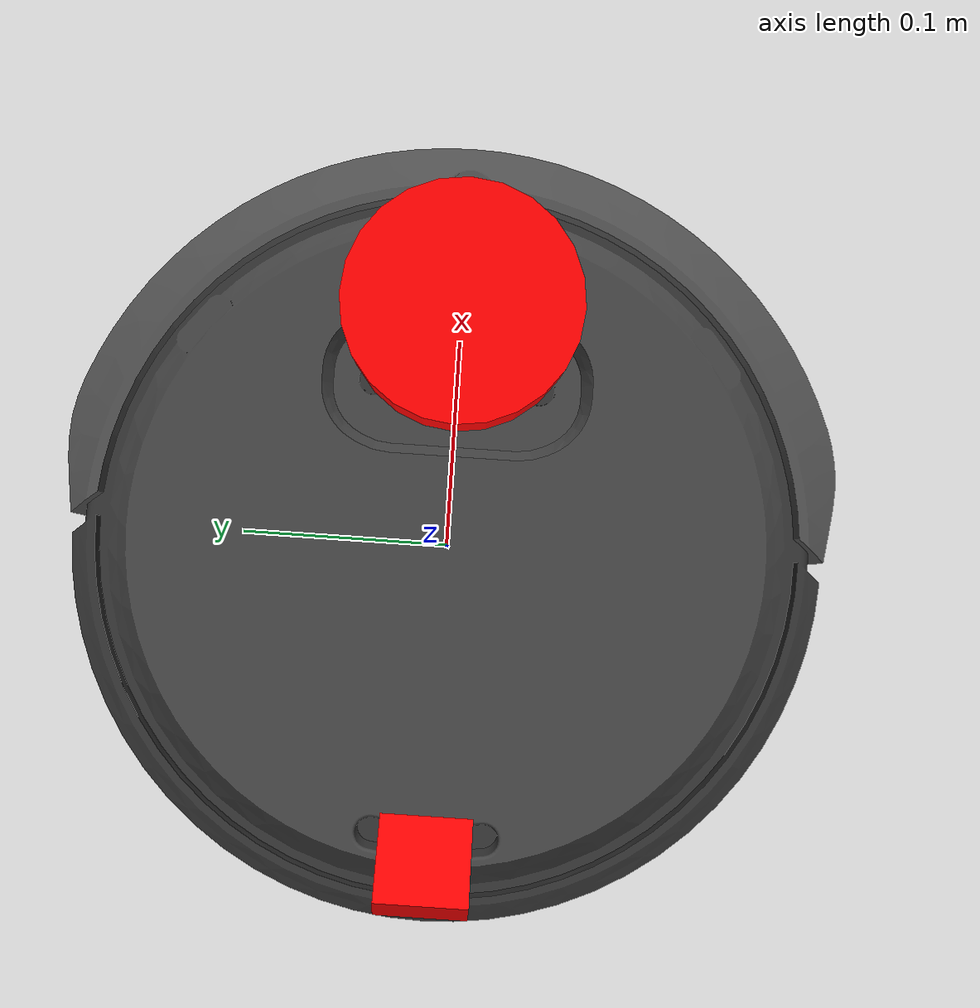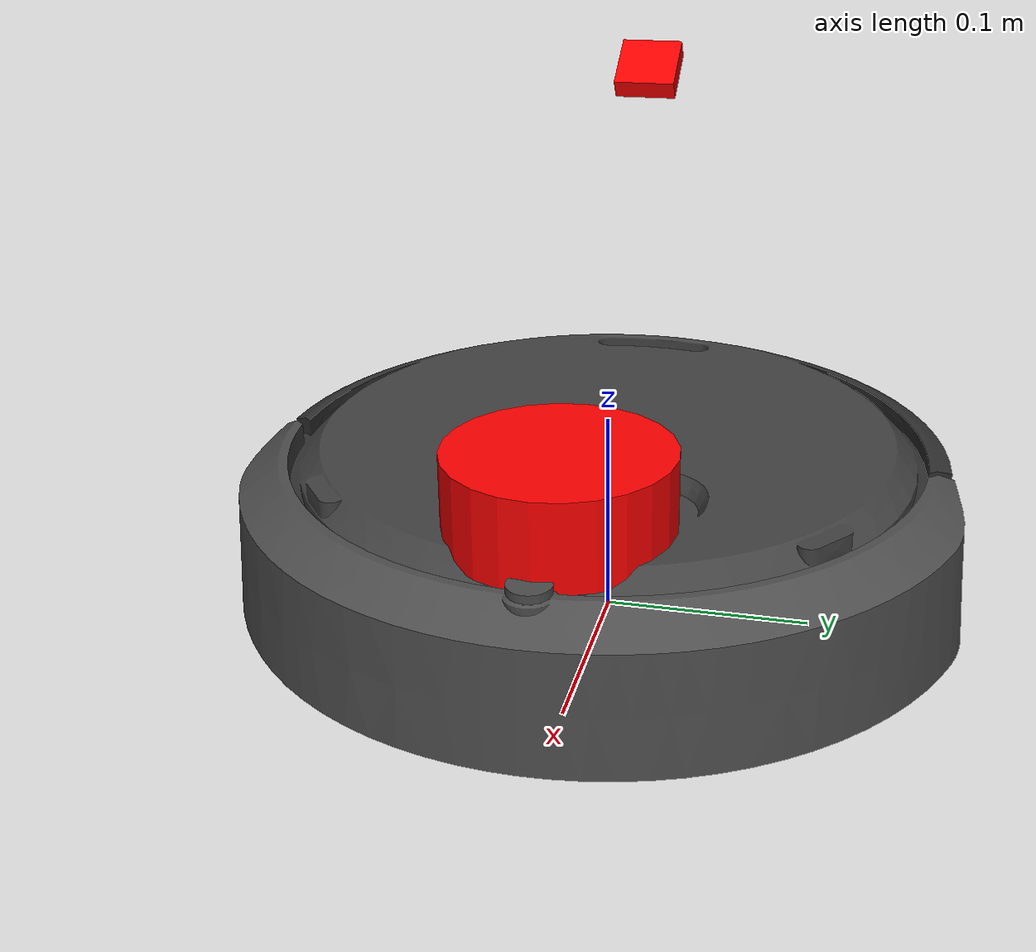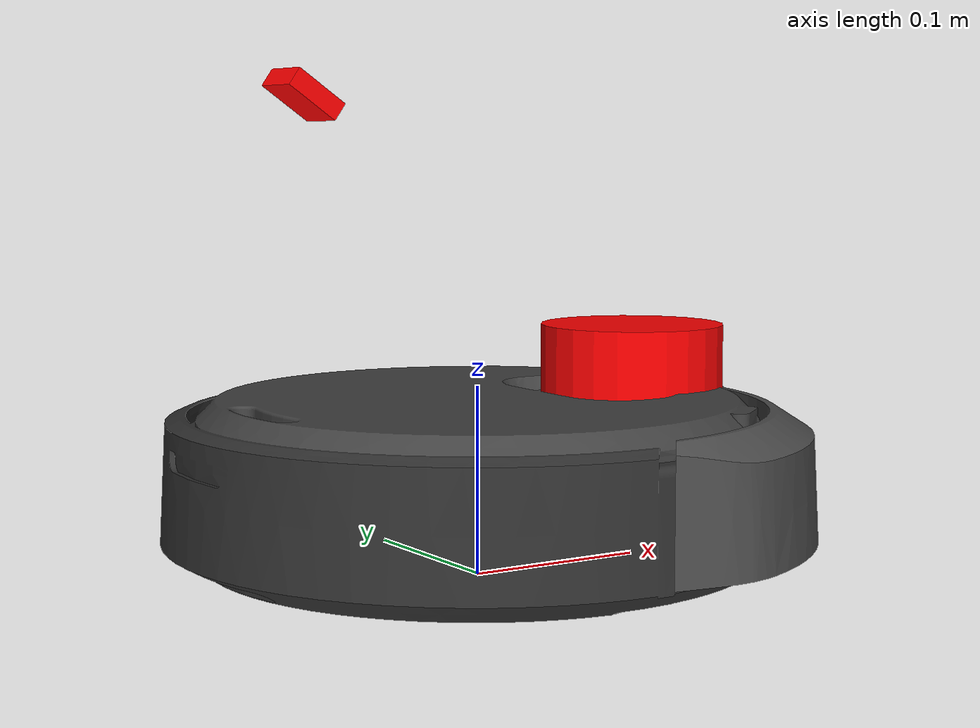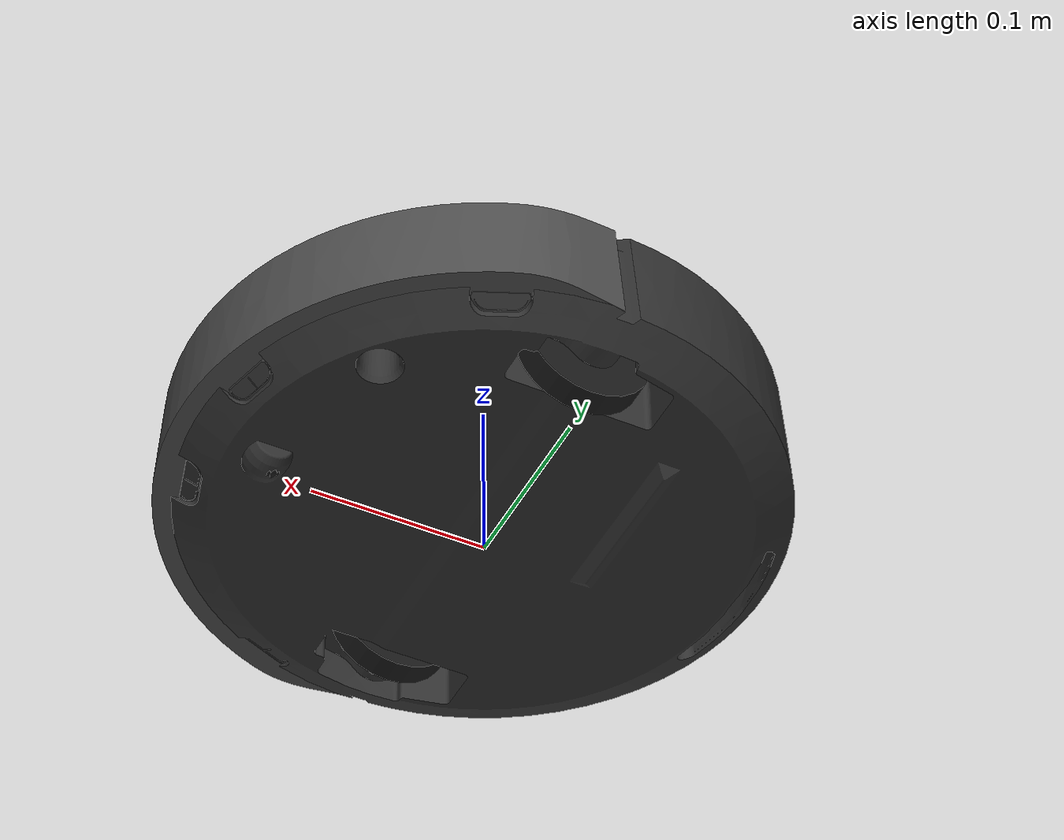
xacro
<?xml version="1.0" ?>
<robot name="create3" xmlns:xacro="http://ros.org/wiki/xacro">
  <xacro:include filename="$(find irobot_create_description)/urdf/bumper.urdf.xacro" />
  <xacro:include filename="$(find irobot_create_description)/urdf/button.urdf.xacro" />
  <xacro:include filename="$(find irobot_create_description)/urdf/caster.urdf.xacro" />
  <xacro:include filename="$(find irobot_create_description)/urdf/common_properties.urdf.xacro"/>
  <xacro:include filename="$(find irobot_create_description)/urdf/sensors/cliff_sensor.urdf.xacro"/>
  <xacro:include filename="$(find irobot_create_description)/urdf/sensors/imu.urdf.xacro" />
  <xacro:include filename="$(find irobot_create_description)/urdf/sensors/ir_intensity.urdf.xacro" />
  <xacro:include filename="$(find irobot_create_description)/urdf/sensors/ir_opcode_receivers.urdf.xacro" />
  <xacro:include filename="$(find irobot_create_description)/urdf/sensors/optical_mouse.urdf.xacro"/>
  <xacro:include filename="$(find irobot_create_description)/urdf/sensors/lidar.xacro"/>
  <xacro:include filename="$(find irobot_create_description)/urdf/sensors/camera.xacro"/>
  <xacro:include filename="$(find irobot_create_description)/urdf/wheel_with_wheeldrop.urdf.xacro" />

  <!-- Gazebo version -->
  <xacro:arg name="gazebo"                       default="classic" />

  <!-- Namespace -->
  <xacro:arg name="namespace"                    default=""/>

  <!-- Mechanical properties -->
  <xacro:property name="body_z_offset"           value="${-2.5*cm2m}" />
  <xacro:property name="body_collision_z_offset" value="${1*cm2m}" />
  <xacro:property name="body_mass"               value="2.300" />
  <xacro:property name="body_radius"             value="${16.4*cm2m}" />
  <xacro:property name="body_length"             value="${6*cm2m}" />

  <xacro:if value="${'$(arg gazebo)' == 'ignition'}">
    <xacro:property name="body_cog_x_offset"       value="${2.28*cm2m}" />
  </xacro:if>
  <xacro:if value="${'$(arg gazebo)' == 'classic'}">
    <xacro:property name="body_cog_x_offset"       value="${0*cm2m}" />
  </xacro:if>

  <xacro:property name="bumper_mass"             value="0.1" />
  <xacro:property name="bumper_offset_z"         value="${-2.5*cm2m}" />
  <xacro:property name="bumper_inertial_x"       value="${8*cm2m}" />
  <xacro:property name="bumper_inertial_z"       value="${2*cm2m}"/>

  <xacro:property name="wheel_height"            value="${-2.75*cm2m}" />
  <xacro:property name="distance_between_wheels" value="${23.3*cm2m}" />

  <xacro:property name="caster_position_x"       value="${12.5*cm2m}" />
  <xacro:if value="${'$(arg gazebo)' == 'ignition'}">
    <xacro:property name="caster_position_z"       value="${-5.03*cm2m}" />
  </xacro:if>
  <xacro:if value="${'$(arg gazebo)' == 'classic'}">
    <xacro:property name="caster_position_z"       value="${-5.2*cm2m}" />
  </xacro:if>

  <xacro:property name="wheel_drop_offset_z"     value="${3.5*mm2m}"/>
  <xacro:property name="wheel_drop_z"            value="${wheel_height + wheel_drop_offset_z}"/>

  <xacro:property name="base_link_z_offset"     value="${6.42*cm2m}"/>

  <!-- Docking properties -->
  <xacro:property name="robot_model_name" value="create3"/>
  <xacro:property name="receiver_link_name" value="ir_omni"/>
  <xacro:property name="dock_model_name" value="standard_dock"/>
  <xacro:property name="emitter_link_name" value="halo_link"/>
  <xacro:arg name="visualize_rays" default="false"/>
  <!-- Create 3 base definition-->
  <link name="base_link">
    <visual>
      <origin xyz="0 0 ${body_z_offset + base_link_z_offset}" rpy="0 0 ${pi/2}"/>
      <geometry>
        <mesh filename="package://irobot_create_description/meshes/body_visual.dae" />
      </geometry>
    </visual>
    <collision name="create3_base_collision">
      <origin xyz="0 0 ${body_z_offset + body_collision_z_offset  + base_link_z_offset}" rpy="0 0 ${pi/2}"/>
      <geometry>
        <cylinder length="${body_length}" radius="${body_radius}"/>
      </geometry>
    </collision>
    <xacro:inertial_cylinder_with_pose mass="${body_mass}" radius="${body_radius}" length="${body_length}">
      <origin xyz="${body_cog_x_offset} 0 ${body_collision_z_offset + base_link_z_offset}"/>
    </xacro:inertial_cylinder_with_pose>
  </link>

  <xacro:if value="${'$(arg gazebo)' == 'ignition'}">
    <gazebo reference="base_link">
      <xacro:material_darkgray/>
    </gazebo>
  </xacro:if>

  <!-- Bumper -->
  <xacro:bumper
      gazebo="$(arg gazebo)"
      namespace="$(arg namespace)"
      visual_mesh="package://irobot_create_description/meshes/bumper_visual.dae"
      collision_mesh="package://irobot_create_description/meshes/bumper_collision.dae">
    <origin xyz="0 0 ${bumper_offset_z  + base_link_z_offset}"/>
    <inertial>
      <origin xyz="${bumper_inertial_x} 0 ${bumper_inertial_z}"/>
      <mass value="${bumper_mass}"/>
      <inertia ixx="0.0013483753405" ixy="0.0000000454352" ixz="0.0000014434849"
               iyy="0.0002521736852" iyz="-0.0000000006721" izz="0.0015442525386"/>
    </inertial>
  </xacro:bumper>

  <!-- Wheels with mechanical wheel drop -->
  <xacro:wheel_with_wheeldrop name="left" gazebo="$(arg gazebo)" namespace="$(arg namespace)">
    <origin xyz="0 ${distance_between_wheels/2} ${wheel_drop_z  + base_link_z_offset}" rpy="${-pi/2} 0 0"/>
  </xacro:wheel_with_wheeldrop>

  <xacro:wheel_with_wheeldrop name="right" gazebo="$(arg gazebo)" namespace="$(arg namespace)">
    <origin xyz="0 ${-distance_between_wheels/2} ${wheel_drop_z  + base_link_z_offset}" rpy="${-pi/2} 0 0"/>
  </xacro:wheel_with_wheeldrop>

  <!-- Caster wheel -->
  <xacro:caster name="front_caster" parent_link="base_link">
    <origin xyz="${caster_position_x} 0 ${caster_position_z  + base_link_z_offset}" rpy="${-pi/2} 0 0"/>
  </xacro:caster>

  <!-- LIDAR -->
  <xacro:lidar_sensor gazebo="$(arg gazebo)" namespace="$(arg namespace)">

  </xacro:lidar_sensor>

  <!-- CAMERA -->
  <xacro:camera_sensor gazebo="$(arg gazebo)" namespace="$(arg namespace)">

  </xacro:camera_sensor>

  <!-- IMU -->
  <xacro:imu_sensor gazebo="$(arg gazebo)" namespace="$(arg namespace)">
    <origin xyz="0.050613 0.043673 ${0.0202 + base_link_z_offset}"/>
  </xacro:imu_sensor>

  <xacro:if value="${'$(arg gazebo)' == 'classic'}">
    <gazebo>
      <plugin name="gazebo_ros2_control" filename="libgazebo_ros2_control.so">
        <parameters>$(find irobot_create_control)/config/control.yaml</parameters>
        <ros>
          <remapping>~/odom:=odom</remapping>
          <remapping>/tf:=tf</remapping>
          <remapping>/tf_static:=tf_static</remapping>
          <remapping>/diagnostics:=diagnostics</remapping>
          <namespace>$(arg namespace)</namespace>
        </ros>
      </plugin>
    </gazebo>
  </xacro:if>

  <xacro:if value="${'$(arg gazebo)' == 'ignition'}">
    <gazebo>
      <plugin filename="libign_ros2_control-system.so" name="ign_ros2_control::IgnitionROS2ControlPlugin">
        <parameters>$(find irobot_create_control)/config/control.yaml</parameters>
        <ros>
          <remapping>~/odom:=odom</remapping>
          <remapping>/tf:=tf</remapping>
          <remapping>/tf_static:=tf_static</remapping>
          <remapping>/diagnostics:=diagnostics</remapping>
          <namespace>$(arg namespace)</namespace>
        </ros>
      </plugin>
    </gazebo>
  </xacro:if>

  <!-- Mouse -->
  <xacro:optical_mouse gazebo="$(arg gazebo)" namespace="$(arg namespace)">
    <origin xyz="0.1015 0.087 ${-0.055 + base_link_z_offset}" rpy="0 0 ${-pi/4}"/>
  </xacro:optical_mouse>

  <!-- Cliffs sensors -->
  <xacro:property name="cliff_z"  value="${-4.5*cm2m}" />

  <xacro:property name="cliff_center_x" value="${16*cm2m}"/>
  <xacro:property name="cliff_center_y" value="${4.5*cm2m}"/>
  <xacro:property name="cliff_center_pitch" value="${80*deg2rad}"/>
  <xacro:property name="cliff_center_yaw" value="${65.3*deg2rad}"/>

  <xacro:property name="cliff_back_x" value="${6*cm2m}"/>
  <xacro:property name="cliff_back_y" value="${14.5*cm2m}"/>
  <xacro:property name="cliff_back_pitch" value="${80*deg2rad}"/>
  <xacro:property name="cliff_back_yaw" value="${167.4*deg2rad}"/>

  <xacro:cliff_sensor name="side_left" gazebo="$(arg gazebo)" visualize="$(arg visualize_rays)" namespace="$(arg namespace)">
    <origin xyz="${cliff_back_x} ${cliff_back_y} ${cliff_z + base_link_z_offset}"
            rpy="0 ${cliff_back_pitch} ${cliff_back_yaw}"/>
  </xacro:cliff_sensor>

  <xacro:cliff_sensor name="side_right" gazebo="$(arg gazebo)" visualize="$(arg visualize_rays)" namespace="$(arg namespace)">
    <origin xyz="${cliff_back_x} ${- cliff_back_y} ${cliff_z + base_link_z_offset}"
            rpy="0 ${cliff_back_pitch} ${- cliff_back_yaw}"/>
  </xacro:cliff_sensor>

  <xacro:cliff_sensor name="front_left" gazebo="$(arg gazebo)" visualize="$(arg visualize_rays)" namespace="$(arg namespace)">
    <origin xyz="${cliff_center_x} ${cliff_center_y} ${cliff_z + base_link_z_offset}"
            rpy="0 ${cliff_center_pitch} ${cliff_center_yaw}"/>
  </xacro:cliff_sensor>

  <xacro:cliff_sensor name="front_right" gazebo="$(arg gazebo)" visualize="$(arg visualize_rays)" namespace="$(arg namespace)">
    <origin xyz="${cliff_center_x} ${- cliff_center_y} ${cliff_z + base_link_z_offset}"
            rpy="0 ${cliff_center_pitch} ${- cliff_center_yaw}"/>
  </xacro:cliff_sensor>

  <!-- IR intensity sensors -->
  <xacro:property name="ir_intensity_z_pos" value="${-0.7*cm2m}"/>
  <xacro:ir_intensity name="front_center_left" gazebo="$(arg gazebo)" namespace="$(arg namespace)">
    <origin xyz="0.1540 0 ${ir_intensity_z_pos + base_link_z_offset}"/>
  </xacro:ir_intensity>
  <xacro:ir_intensity name="front_center_right" gazebo="$(arg gazebo)" namespace="$(arg namespace)">
    <origin xyz="0.1396 -0.0651 ${ir_intensity_z_pos + base_link_z_offset}" rpy="0 0 -0.436"/>
  </xacro:ir_intensity>
  <xacro:ir_intensity name="front_left" gazebo="$(arg gazebo)" namespace="$(arg namespace)">
    <origin xyz="0.1396 0.0651 ${ir_intensity_z_pos + base_link_z_offset}" rpy="0 0 0.436"/>
  </xacro:ir_intensity>
  <xacro:ir_intensity name="front_right" gazebo="$(arg gazebo)" namespace="$(arg namespace)">
    <origin xyz="0.0990 -0.1180 ${ir_intensity_z_pos + base_link_z_offset}" rpy="0 0 -0.873"/>
  </xacro:ir_intensity>
  <xacro:ir_intensity name="left" gazebo="$(arg gazebo)" namespace="$(arg namespace)">
    <origin xyz="0.0990 0.1180 ${ir_intensity_z_pos + base_link_z_offset}" rpy="0 0 0.873"/>
  </xacro:ir_intensity>
  <xacro:ir_intensity name="right" gazebo="$(arg gazebo)" namespace="$(arg namespace)">
    <origin xyz="0.0399 -0.1488 ${ir_intensity_z_pos + base_link_z_offset}" rpy="0 0 -1.309"/>
  </xacro:ir_intensity>
  <xacro:ir_intensity name="side_left" gazebo="$(arg gazebo)" namespace="$(arg namespace)">
    <origin xyz="0.0399 0.1488 ${ir_intensity_z_pos + base_link_z_offset}" rpy="0 0 1.309"/>
  </xacro:ir_intensity>

  <!-- Buttons -->
  <xacro:button
      name="button_1">
      <origin xyz="0.06 0.37 ${0.08 + base_link_z_offset}" rpy="0 ${-pi/2} 0"/>
  </xacro:button>
  <xacro:button
      name="button_2">
      <origin xyz="0.06 -0.37 ${0.08 + base_link_z_offset}" rpy="0 ${-pi/2} 0"/>
  </xacro:button>
  <xacro:button
      name="button_power">
      <origin xyz="0.06 0 ${0.08 + base_link_z_offset}" rpy="0 ${-pi/2} 0"/>
  </xacro:button>

  <!-- Omni IR receiver (sensor 0) parameters and Front-facing IR receiver (sensor 1) parameters -->
  <xacro:property name="ir_omni_fov_rad" value="${220.0*deg2rad}"/>
  <xacro:property name="ir_front_facing_fov_rad" value="${pi/2}"/>
  <xacro:ir_opcode_receivers gazebo="$(arg gazebo)" namespace="$(arg namespace)"
    robot_model_name="${robot_model_name}" dock_model_name="${dock_model_name}"
    emitter_link_name="${emitter_link_name}" sensor_0_range="0.01" sensor_0_fov="${ir_omni_fov_rad}"
    sensor_1_range="0.5" sensor_1_fov="${ir_front_facing_fov_rad}" >
    <origin xyz="0.153 0 ${0.035 + base_link_z_offset}"/>
  </xacro:ir_opcode_receivers>

  <!-- Plugins -->
  <xacro:if value="${'$(arg gazebo)' == 'classic'}">
    <!-- Ground truth pose -->
    <gazebo>
      <plugin name="gazebo_ros_p3d_robot" filename="libgazebo_ros_p3d.so">
        <ros>
          <namespace>$(arg namespace)</namespace>
          <remapping>odom:=sim_ground_truth_pose</remapping>
        </ros>
        <body_name>base_link</body_name>
        <frame_name>world</frame_name>
        <update_rate>62</update_rate>
        <xyz_offset>0 0 0</xyz_offset>
        <rpy_offset>0.0 0.0 0.0</rpy_offset>
        <gaussian_noise>0.0</gaussian_noise>
      </plugin>
    </gazebo>

    <!-- Dock status -->
    <gazebo>
      <plugin name="dock_status_publisher" filename="libgazebo_ros_create_docking_status.so">
        <ros>
          <namespace>$(arg namespace)</namespace>
          <remapping>~/out:=dock_status</remapping>
        </ros>
        <update_rate>1.0</update_rate>
        <robot_model_name>${robot_model_name}</robot_model_name>
        <receiver_link_name>${receiver_link_name}</receiver_link_name>
        <dock_model_name>${dock_model_name}</dock_model_name>
        <emitter_link_name>${emitter_link_name}</emitter_link_name>
      </plugin>
    </gazebo>
  </xacro:if>

  <xacro:if value="${'$(arg gazebo)' == 'ignition'}">
    <gazebo>
      <plugin filename="libignition-gazebo-pose-publisher-system.so" name="ignition::gazebo::systems::PosePublisher">
        <publish_link_pose>true</publish_link_pose>
        <publish_nested_model_pose>true</publish_nested_model_pose>
        <use_pose_vector_msg>true</use_pose_vector_msg>
        <update_frequency>62</update_frequency>
      </plugin>
    </gazebo>

    <gazebo>
      <plugin filename="libignition-gazebo-contact-system.so" name="ignition::gazebo::systems::Contact"></plugin>
    </gazebo>

    <gazebo>
      <plugin filename="libignition-gazebo-sensors-system.so" name="ignition::gazebo::systems::Sensors">
        <render_engine>ogre</render_engine>
      </plugin>
    </gazebo>
  </xacro:if>
</robot>

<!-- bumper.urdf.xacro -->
<robot xmlns:xacro="http://ros.org/wiki/xacro">

<!-- The robot has a bumper with 5 contact sensors. The center one is
functional, while the 4 remaining ones are created as dummy links. -->
<xacro:macro name="dummy_bumper_zone" params="name parent_link:=base_link *origin">
  <xacro:property name="link_name" value="${name}"/>
  <xacro:property name="joint_name" value="${name}_joint"/>

  <joint name="${joint_name}" type="fixed">
    <parent link="${parent_link}"/>
    <child link="${link_name}"/>
    <xacro:insert_block name="origin"/>
  </joint>
  <link name="${link_name}"/>
</xacro:macro>

<xacro:macro name="bumper" params="name:=bumper namespace parent_link:=base_link update_rate:=62.0 gazebo visual_mesh collision_mesh
  *origin *inertial">
  <xacro:property name="link_name" value="${name}"/>
  <xacro:property name="joint_name" value="${name}_joint"/>

  <joint name="${joint_name}" type="fixed">
    <parent link="${parent_link}"/>
    <child link="${link_name}"/>
    <xacro:insert_block name="origin"/>
  </joint>
  <link name="${link_name}">
    <visual>
      <geometry>
        <mesh filename="${visual_mesh}"/>
      </geometry>
    </visual>
    <collision>
      <geometry>
        <mesh filename="${collision_mesh}"/>
      </geometry>
    </collision>
    <xacro:insert_block name="inertial"/>
  </link>

  <gazebo reference="${name}" >
    <mu1>0.1</mu1>
    <mu2>0.1</mu2>
    <maxVel>0.01</maxVel>
    <minDepth>0.001</minDepth>
    <maxContacts>10</maxContacts>
    <material>Gazebo/DarkGrey</material>
    <sensor name='${name}_contact_sensor' type='contact'>
      <always_on>true</always_on>
      <update_rate>${update_rate}</update_rate>
      <contact>
        <collision>${link_name}_collision</collision>
        <xacro:if value="${gazebo == 'ignition'}">
          <xacro:if value="${namespace == ''}">
            <topic>/bumper_contact</topic>
          </xacro:if>
          <xacro:if value="${namespace != ''}">
            <topic>${namespace}/bumper_contact</topic>
          </xacro:if>
        </xacro:if>
      </contact>
      <xacro:if value="${gazebo == 'classic'}">
        <plugin name="${name}_plugin" filename="libgazebo_ros_create_bumper.so">
          <ros>
            <namespace>${namespace}</namespace>
            <remapping>~/out:=_internal/bumper/event</remapping>
          </ros>
        </plugin>
      </xacro:if>
    </sensor>
  </gazebo>

  <gazebo reference="${joint_name}">
    <preserveFixedJoint>true</preserveFixedJoint>
  </gazebo>

  <xacro:dummy_bumper_zone
      name="bump_front_center">
      <origin xyz="0.175 0 0.039" rpy="0 0 0"/>
  </xacro:dummy_bumper_zone>

  <xacro:dummy_bumper_zone
      name="bump_front_left">
      <origin xyz="0.02345 -0.0875 0.025" rpy="0 0 0.5235985"/>
  </xacro:dummy_bumper_zone>

  <xacro:dummy_bumper_zone
      name="bump_front_right">
      <origin xyz="0.02345 0.0875 0.025" rpy="0 0 -0.5235985"/>
  </xacro:dummy_bumper_zone>

  <xacro:dummy_bumper_zone
      name="bump_left">
      <origin xyz="0.0875 -0.15155 0.025" rpy="0 0 1.047193"/>
  </xacro:dummy_bumper_zone>

  <xacro:dummy_bumper_zone
      name="bump_right">
      <origin xyz="0.0875 0.15155 0.025" rpy="0 0 -1.047193"/>
  </xacro:dummy_bumper_zone>

</xacro:macro>

</robot>

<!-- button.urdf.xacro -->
<robot xmlns:xacro="http://ros.org/wiki/xacro">

<xacro:macro name="button" params="name parent_link:=base_link *origin">
  <joint name="${name}_joint" type="fixed">
    <parent link="${parent_link}"/>
    <child link="${name}"/>
    <xacro:insert_block name="origin"/>
  </joint>
  <link name="${name}"/>
</xacro:macro>

</robot>

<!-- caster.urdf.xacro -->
<robot xmlns:xacro="http://ros.org/wiki/xacro">

<xacro:macro name="caster" params="name parent_link *origin">
  <xacro:include filename="$(find irobot_create_description)/urdf/common_properties.urdf.xacro"/>

  <xacro:property name="radius" value="${1*cm2m}" />
  <xacro:property name="mass"   value="0.01"/>

  <joint name="${name}_joint" type="fixed">
    <parent link="${parent_link}"/>
    <child link="${name}_link"/>
    <xacro:insert_block name="origin"/>
  </joint>
  <link name="${name}_link">
    <visual>
      <geometry>
        <sphere radius="${radius}"/>
      </geometry>
      <!-- Give black color to caster in Rviz -->
      <xacro:insert_block name="material_black"/>
    </visual>
    <collision>
      <geometry>
        <sphere radius="${radius}"/>
      </geometry>
    </collision>
    <xacro:inertial_sphere mass="${mass}" radius="${radius}"/>
  </link>

  <gazebo reference="${name}_joint">
    <preserveFixedJoint>true</preserveFixedJoint>
  </gazebo>

  <gazebo reference="${name}_link">
    <material>Gazebo/DarkGrey</material>
    <mu1>0.1</mu1>
    <mu2>0.1</mu2>
    <kp>1000000.0</kp>
    <kd>1.0</kd>
  </gazebo>

</xacro:macro>
</robot>

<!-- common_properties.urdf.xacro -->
<!-- Various useful macros -->
<robot name="xacro_properties" xmlns:xacro="http://ros.org/wiki/xacro">

  <xacro:macro name="inertial_cuboid_with_pose" params="mass x y z *origin">
    <inertial>
      <mass value="${mass}" />
      <xacro:insert_block name="origin"/>
      <inertia ixx="${(1/12) * mass * (y*y + z*z)}" ixy="0.0" ixz="0.0"
        iyy="${(1/12) * mass * (x*x + z*z)}" iyz="0.0"
        izz="${(1/12) * mass * (x*x + y*y)}" />
    </inertial>
  </xacro:macro>

  <xacro:macro name="inertial_cuboid" params="mass x y z">
    <xacro:inertial_cuboid_with_pose mass="${mass}" x="${x}" y="${y}" z="${z}">
      <origin xyz="0 0 0" />
    </xacro:inertial_cuboid_with_pose>
  </xacro:macro>

  <xacro:macro name="inertial_cylinder_with_pose" params="mass radius length *origin">
    <inertial>
      <xacro:insert_block name="origin"/>
      <mass value="${mass}" />
      <inertia ixx="${(1/12) * mass * (3*radius*radius + length*length)}" ixy="0.0" ixz="0.0"
        iyy="${(1/12) * mass * (3*radius*radius + length*length)}" iyz="0.0"
        izz="${(1/2) * mass * (radius*radius)}" />
    </inertial>
  </xacro:macro>

  <xacro:macro name="inertial_cylinder" params="mass radius length">
    <xacro:inertial_cylinder_with_pose mass="${mass}" radius="${radius}" length="${length}">
      <origin xyz="0 0 0" />
    </xacro:inertial_cylinder_with_pose>
  </xacro:macro>

  <xacro:macro name="inertial_sphere" params="mass radius">
    <inertial>
      <mass value="${mass}" />
      <inertia ixx="${(2/5) * mass * radius * radius}" ixy="0.0" ixz="0.0"
	             iyy="${(2/5) * mass * radius * radius}" iyz="0.0"
	             izz="${(2/5) * mass * radius * radius}" />
    </inertial>
  </xacro:macro>

  <xacro:macro name="inertial_dummy">
    <xacro:inertial_cuboid mass="0.01" x="0.01" y="0.01" z="0.01"/>
  </xacro:macro>

  <xacro:macro name="ray_sensor"
    params="sensor_name gazebo update_rate visualize
            h_samples h_res h_min_angle h_max_angle
            v_samples:=1 v_res:=1 v_min_angle:=0 v_max_angle:=0
            r_min r_max r_res *plugin">
    <!-- Classic -->
    <xacro:if value="${gazebo == 'classic'}">
      <sensor type="ray" name="${sensor_name}">
        <update_rate>${update_rate}</update_rate>
        <visualize>${visualize}</visualize>
        <always_on>true</always_on>
        <ray>
          <scan>
            <horizontal>
              <samples>${h_samples}</samples>
              <resolution>${h_res}</resolution>
              <min_angle>${h_min_angle}</min_angle>
              <max_angle>${h_max_angle}</max_angle>
            </horizontal>
            <vertical>
              <samples>${v_samples}</samples>
              <resolution>${v_res}</resolution>
              <min_angle>${v_min_angle}</min_angle>
              <max_angle>${v_max_angle}</max_angle>
            </vertical>
          </scan>
          <range>
            <min>${r_min}</min>
            <max>${r_max}</max>
            <resolution>${r_res}</resolution>
          </range>
        </ray>
        <!-- Noise is currently disabled -->
        <noise>
          <type>gaussian</type>
          <mean>0.0</mean>
          <stddev>0.0</stddev>
        </noise>
        <xacro:insert_block name="plugin"/>
      </sensor>
    </xacro:if>

    <!-- Ignition -->
    <xacro:if value="${gazebo == 'ignition'}">
      <sensor name="${sensor_name}" type="gpu_lidar">
        <update_rate>${update_rate}</update_rate>
        <visualize>${visualize}</visualize>
        <always_on>true</always_on>
        <lidar>
          <scan>
            <horizontal>
              <samples>${h_samples}</samples>
              <resolution>${h_res}</resolution>
              <min_angle>${h_min_angle}</min_angle>
              <max_angle>${h_max_angle}</max_angle>
            </horizontal>
            <vertical>
              <samples>${v_samples}</samples>
              <resolution>${v_res}</resolution>
              <min_angle>${v_min_angle}</min_angle>
              <max_angle>${v_max_angle}</max_angle>
            </vertical>
          </scan>
          <range>
            <min>${r_min}</min>
            <max>${r_max}</max>
            <resolution>${r_res}</resolution>
          </range>
        </lidar>
      </sensor>
    </xacro:if>
  </xacro:macro>

  <!-- Conversion macros -->
  <xacro:property name="cm2m"    value="${1/100.0}"/>
  <xacro:property name="mm2m"    value="${1/1000.0}"/>
  <xacro:property name="in2m"    value="0.0254"/>
  <xacro:property name="deg2rad" value="${pi/180.0}"/>

  <!-- Material colors -->
  <xacro:property name="material_black">
    <material name="black">
      <color rgba="0.1 0.1 0.1 1"/>
    </material>
  </xacro:property>

  <!-- Material macros -->
  <xacro:macro name="material_black">
    <visual>
      <material>
        <diffuse>0 0 0 1</diffuse>
        <specular>${80/255} ${80/255} ${80/255} 1</specular>
        <emissive>0 0 0 1</emissive>
      </material>
    </visual>
  </xacro:macro>

  <xacro:macro name="material_darkgray">
    <visual>
      <material>
        <diffuse>${3/255} ${3/255} ${3/255} 1</diffuse>
        <specular>0 0 0 1</specular>
        <emissive>0 0 0 1</emissive>
      </material>
    </visual>
  </xacro:macro>

</robot>

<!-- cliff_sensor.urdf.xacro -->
<robot xmlns:xacro="http://ros.org/wiki/xacro">

<xacro:macro name="cliff_sensor" params="name gazebo namespace parent:=base_link
                                         visualize:=false *origin">
  <!-- Sensor settings -->
  <xacro:property name="update_rate"         value="62"/>
  <xacro:property name="fov_deg"             value="5"/>
  <xacro:property name="fov_rad"             value="${fov_deg*deg2rad}"/>
  <xacro:property name="min_range"           value="${0.01*cm2m}"/>
  <xacro:property name="max_range"           value="${15*cm2m}"/>
  <xacro:property name="samples"             value="${fov_deg/5}"/>
  <xacro:property name="sensor_name"         value="cliff_${name}"/>
  <xacro:property name="detection_threshold" value="${8*cm2m}"/>

  <joint name="${sensor_name}_joint" type="fixed">
    <xacro:insert_block name="origin"/>
    <parent link="${parent}"/>
    <child link="${sensor_name}"/>
  </joint>

  <link name="${sensor_name}">
    <xacro:inertial_dummy/>
  </link>

  <gazebo reference="${sensor_name}">
    <xacro:ray_sensor sensor_name="${sensor_name}" gazebo="${gazebo}"
                      update_rate="${update_rate}" visualize="${visualize}"
                      h_samples="${samples}" h_res="1.0" h_min_angle="-${fov_rad/2}" h_max_angle="${fov_rad/2}"
                      r_min="${min_range}" r_max="${max_range}" r_res="1.0">
      <plugin name="${sensor_name}" filename="libgazebo_ros_create_cliff_sensor.so">
        <ros>
          <namespace>${namespace}</namespace>
          <remapping>~/out:=_internal/${sensor_name}/event</remapping>
        </ros>
        <detection_threshold>${detection_threshold}</detection_threshold>
        <frame_id>${sensor_name}</frame_id>
      </plugin>
    </xacro:ray_sensor>
  </gazebo>
</xacro:macro>

</robot>

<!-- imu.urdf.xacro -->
<robot xmlns:xacro="http://ros.org/wiki/xacro">

<xacro:macro name="imu_sensor" params="name:=imu gazebo namespace parent:=base_link update_rate:=62 *origin">

  <joint name="${name}_joint" type="fixed">
    <xacro:insert_block name="origin"/>
    <parent link="${parent}"/>
    <child link="${name}_link"/>
  </joint>

  <link name="${name}_link">
      <xacro:inertial_dummy />
  </link>

  <gazebo reference="${name}_link">
    <sensor type="imu" name="${name}">
      <always_on>true</always_on>
      <update_rate>${update_rate}</update_rate>
      <imu>
        <angular_velocity>
          <x>
            <noise type="gaussian">
              <mean>0.0</mean>
              <stddev>0.0</stddev>
            </noise>
          </x>
          <y>
            <noise type="gaussian">
              <mean>0.0</mean>
              <stddev>0.0</stddev>
            </noise>
          </y>
          <z>
            <noise type="gaussian">
              <mean>0.0</mean>
              <stddev>0.0</stddev>
            </noise>
          </z>
        </angular_velocity>
        <linear_acceleration>
          <x>
            <noise type="gaussian">
              <mean>0.0</mean>
              <stddev>0.0</stddev>
            </noise>
          </x>
          <y>
            <noise type="gaussian">
              <mean>0.0</mean>
              <stddev>0.0</stddev>
            </noise>
          </y>
          <z>
            <noise type="gaussian">
              <mean>0.0</mean>
              <stddev>0.0</stddev>
            </noise>
          </z>
        </linear_acceleration>
      </imu>
      <xacro:if value="${gazebo == 'classic'}">
        <plugin name="${name}_plugin" filename="libgazebo_ros_create_imu.so">
          <ros>
            <namespace>${namespace}</namespace>
            <remapping>~/out:=imu</remapping>
          </ros>
        </plugin>
      </xacro:if>
    </sensor>
  </gazebo>

  <gazebo reference="${name}_joint">
    <preserveFixedJoint>true</preserveFixedJoint>
  </gazebo>

</xacro:macro>
</robot>

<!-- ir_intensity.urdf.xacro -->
<robot xmlns:xacro="http://ros.org/wiki/xacro">
  <xacro:include filename="$(find irobot_create_description)/urdf/common_properties.urdf.xacro"/>

  <xacro:macro name="ir_intensity"
               params="name gazebo namespace parent:=base_link
                       update_rate:=62.0 fov:=${10*deg2rad}
                       min_range:=${25*mm2m} max_range:=${200*mm2m}
                       visualize:=false *origin" >

    <xacro:property name="link_name" value="ir_intensity_${name}"/>

    <joint name="${link_name}_joint" type="fixed">
      <xacro:insert_block name="origin" />
      <parent link="${parent}"/>
      <child link="${link_name}"/>
    </joint>

    <link name="${link_name}">
      <xacro:inertial_dummy/>
    </link>

    <gazebo reference="${link_name}_joint">
      <preserveFixedJoint>true</preserveFixedJoint>
    </gazebo>

    <gazebo reference="${link_name}">
      <xacro:ray_sensor sensor_name="${link_name}" gazebo="${gazebo}"
                      update_rate="${update_rate}" visualize="${visualize}"
                      h_samples="5" h_res="1.0" h_min_angle="-${fov/2}" h_max_angle="${fov/2}"
                      v_samples="5" v_res="1.0" v_min_angle="-${fov/2}" v_max_angle="${fov/2}"
                      r_min="${min_range}" r_max="${max_range}" r_res="1.0">
          <plugin filename="libgazebo_ros_create_ir_intensity_sensor.so" name="${link_name}">
            <ros>
              <namespace>${namespace}</namespace>
              <remapping>~/out:=_internal/${link_name}</remapping>
            </ros>
          </plugin>
      </xacro:ray_sensor>
    </gazebo>
  </xacro:macro>
</robot>

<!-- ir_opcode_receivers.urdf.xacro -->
<robot xmlns:xacro="http://ros.org/wiki/xacro">

  <xacro:macro name="ir_opcode_receivers" params="name:=ir_omni
                                                  gazebo
                                                  namespace
                                                  robot_model_name
                                                  dock_model_name
                                                  emitter_link_name
                                                  parent:=base_link
                                                  sensor_0_fov
                                                  sensor_0_range
                                                  sensor_1_fov
                                                  sensor_1_range
                                                  samples:=50
                                                  min_range:=0.015
                                                  update_rate:=62
                                                  visualize:=false
                                                  *origin" >

    <xacro:property name="joint_name" value="${name}_joint" />
    <xacro:property name="receiver_link_name" value="${name}" />

    <joint name="${joint_name}" type="fixed">
      <xacro:insert_block name="origin" />
      <parent link="${parent}"/>
      <child link="${receiver_link_name}"/>
    </joint>

    <link name="${receiver_link_name}">
      <xacro:inertial_dummy />
    </link>

    <!-- These rays are only used for aesthetic and debugging purposes only when the visualize flag is set.
    This there is no need for high update rates. -->
    <xacro:if value="${visualize}">
      <!-- Sensor 0 visualization -->
      <gazebo reference="${receiver_link_name}">
        <xacro:ray_sensor sensor_name="sensor_0" gazebo="${gazebo}"
                      update_rate="1" visualize="${visualize}"
                      h_samples="${samples}" h_res="1.0" h_min_angle="-${sensor_0_fov/2}" h_max_angle="${sensor_0_fov/2}"
                      r_min="${min_range}" r_max="${sensor_0_range}" r_res="0.01">
                      <plugin name="dummy" filename="dummyfile"></plugin>
        </xacro:ray_sensor>
      </gazebo>

      <!-- Sensor 1 visualization -->
      <gazebo reference="${receiver_link_name}">
        <xacro:ray_sensor sensor_name="sensor_1" gazebo="${gazebo}"
                      update_rate="1" visualize="${visualize}"
                      h_samples="${samples}" h_res="1.0" h_min_angle="-${sensor_1_fov/2}" h_max_angle="${sensor_1_fov/2}"
                      r_min="${min_range}" r_max="${sensor_1_range}" r_res="0.01">
                      <plugin name="dummy" filename="dummyfile"></plugin>
        </xacro:ray_sensor>
      </gazebo>
    </xacro:if>

    <xacro:if value="${gazebo == 'classic'}">
      <gazebo>
        <plugin name="${name}_plugin" filename="libgazebo_ros_create_ir_opcode.so">
          <ros>
            <namespace>${namespace}</namespace>
            <remapping>~/out:=ir_opcode</remapping>
          </ros>
          <update_rate>${update_rate}</update_rate>
          <robot_model_name>${robot_model_name}</robot_model_name>
          <receiver_link_name>${receiver_link_name}</receiver_link_name>
          <dock_model_name>${dock_model_name}</dock_model_name>
          <emitter_link_name>${emitter_link_name}</emitter_link_name>
          <sensor_0_fov>${sensor_0_fov}</sensor_0_fov>
          <sensor_0_range>${sensor_0_range}</sensor_0_range>
          <sensor_1_fov>${sensor_1_fov}</sensor_1_fov>
          <sensor_1_range>${sensor_1_range}</sensor_1_range>
        </plugin>
      </gazebo>
    </xacro:if>

    <gazebo reference="${joint_name}" >
      <preserveFixedJoint>true</preserveFixedJoint>
    </gazebo>

  </xacro:macro>
</robot>

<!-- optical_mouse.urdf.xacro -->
<robot xmlns:xacro="http://ros.org/wiki/xacro">

  <xacro:macro name="optical_mouse" params="name:=mouse gazebo namespace parent_link:=base_link update_rate:=62 *origin" >

    <joint name="${name}_joint" type="fixed">
      <xacro:insert_block name="origin"/>
      <parent link="${parent_link}"/>
      <child link="${name}"/>
    </joint>

    <link name="${name}">
      <xacro:inertial_dummy />
    </link>

    <xacro:if value="${gazebo == 'classic'}">
      <gazebo>
        <plugin name="${name}_plugin" filename="libgazebo_ros_create_optical_mouse.so">
            <ros>
              <namespace>${namespace}</namespace>
              <remapping>~/out:=${name}</remapping>
            </ros>
          <update_rate>${update_rate}</update_rate>
          <link_name>${name}</link_name>
        </plugin>
      </gazebo>
    </xacro:if>

    <gazebo reference="${name}_joint" >
      <preserveFixedJoint>true</preserveFixedJoint>
    </gazebo>
  </xacro:macro>
</robot>

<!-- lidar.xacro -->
<robot xmlns:xacro="http://www.ros.org/wiki/xacro">

  <xacro:macro name="lidar_sensor" params="gazebo namespace">

    <link name="lidar_frame">
      <visual>
        <geometry>
          <cylinder radius="0.05" length="0.04"/>
        </geometry>
        <material name="red">
            <color rgba="1 0 0 1"/>
        </material>
      </visual>
      <collision>
        <geometry>
          <cylinder radius="0.05" length="0.04"/>
        </geometry>
      </collision>
      <xacro:inertial_cylinder mass="0.1" length="0.04" radius="0.05"/>
    </link>

    <joint name="lidar_joint" type="fixed">
        <parent link="base_link"/>
        <child link="lidar_frame"/>
        <origin xyz="0.10 0 0.108" rpy="0 0 3.14159"/>
    </joint>

    <gazebo reference="lidar_frame">
      <sensor name="laser" type="ray">
        <pose> 0 0 0 0 0 0 </pose>
        <visualize>true</visualize>
        <update_rate>10</update_rate>
        <ray>
          <scan>
            <horizontal>
              <samples>720</samples>
              <min_angle>-3.1459</min_angle>
              <max_angle>3.1459</max_angle>
              <resolution>1</resolution>
            </horizontal>
            <time_increment>0.0000555</time_increment>
            <scan_time>0.1</scan_time>
          </scan>
          <range>
            <min>0.1</min>
            <max>12</max>
          </range>
        </ray>
        <plugin name="laser_controller" filename="libgazebo_ros_ray_sensor.so">
          <ros>
            <argument>~/out:=/scan</argument>
          </ros>
          <output_type>sensor_msgs/LaserScan</output_type>
          <frame_name>lidar_frame</frame_name>
        </plugin>
      </sensor>
    </gazebo>

  </xacro:macro>
</robot>

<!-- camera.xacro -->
<robot xmlns:xacro="http://www.ros.org/wiki/xacro">

  <xacro:macro name="camera_sensor" params="gazebo namespace">
    <joint name="camera_joint" type="fixed">
        <parent link="base_link"/>
        <child link="camera_link"/>
        <origin xyz="-0.10 0 0.25" rpy="0 0.959931 3.1415"/> <!-- Looking 60° down and backwards -->
    </joint>

    <link name="camera_link">
        <inertial>
            <mass value="0.001"/>  <!-- Reduced mass to nearly zero -->
            <inertia ixx="0.000001" ixy="0.0" ixz="0.0"
                     iyy="0.000001" iyz="0.0" izz="0.000001"/>  <!-- Reduced inertia -->
        </inertial>

        <visual>
            <geometry>
                <box size="0.010 0.03 0.03"/>
            </geometry>
            <material name="red">
                <color rgba="1 0 0 1"/>
            </material>
        </visual>
    </link>

    <joint name="camera_optical_joint" type="fixed">
        <parent link="camera_link"/>
        <child link="camera_link_optical"/>
        <origin xyz="0 0 0" rpy="0 0 0"/>
    </joint>

    <link name="camera_link_optical"/>

    <gazebo reference="camera_link">
        <material>Gazebo/Red</material>

        <sensor name="camera" type="camera">
            <pose> 0 0 0 0 0 0 </pose>
            <visualize>true</visualize>
            <update_rate>10</update_rate>
            <camera>
                <horizontal_fov>1.089</horizontal_fov>
                <image>
                    <format>R8G8B8</format>
                    <width>640</width>
                    <height>480</height>
                </image>
                <clip>
                    <near>0.05</near>
                    <far>8.0</far>
                </clip>
            </camera>
            <plugin name="camera_controller" filename="libgazebo_ros_camera.so">
                <frame_name>camera_link_optical</frame_name>
            </plugin>
        </sensor>
    </gazebo>
  </xacro:macro>

</robot>

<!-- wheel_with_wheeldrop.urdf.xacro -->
<robot xmlns:xacro="http://ros.org/wiki/xacro">

<xacro:macro name="wheel_with_wheeldrop" params="name gazebo namespace parent_link:=base_link *origin">
  <xacro:include filename="$(find irobot_create_description)/urdf/wheel.urdf.xacro" />
  <xacro:include filename="$(find irobot_create_description)/urdf/wheel_drop.urdf.xacro" />

  <!-- Wheel Drop definition -->
  <xacro:wheel_drop name="${name}" gazebo="${gazebo}" parent_link="${parent_link}" namespace="${namespace}">
    <xacro:insert_block name="origin"/>
  </xacro:wheel_drop>

  <!-- Wheel definition -->
  <xacro:wheel name="${name}" gazebo="${gazebo}" parent_link="wheel_drop_${name}">
    <origin xyz="0 0 0" rpy="0 0 0"/>
  </xacro:wheel>

</xacro:macro>
</robot>

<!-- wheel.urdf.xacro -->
<robot xmlns:xacro="http://ros.org/wiki/xacro">

<xacro:macro name="wheel" params="name gazebo parent_link *origin">

  <xacro:property name="mass"   value="0.2" />
  <xacro:property name="radius" value="${3.575*cm2m}" />
  <xacro:property name="width"  value="${1.5*cm2m}" />

  <xacro:property name="wheel_link_name"  value="${name}_wheel"/>
  <xacro:property name="wheel_joint_name" value="${wheel_link_name}_joint"/>

  <joint name="${wheel_joint_name}" type="continuous">
    <parent link="${parent_link}"/>
    <child link="${wheel_link_name}"/>
    <xacro:insert_block name="origin"/>
    <axis xyz="0 0 1"/>
  </joint>

  <link name="${wheel_link_name}">
    <visual>
      <geometry>
        <cylinder length="${width}" radius="${radius}"/>
      </geometry>
      <!-- Give black color to wheels in Rviz -->
      <xacro:insert_block name="material_black"/>
    </visual>
    <collision>
      <geometry>
        <cylinder length="${width}" radius="${radius}"/>
      </geometry>
    </collision>
    <xacro:inertial_cylinder mass="${mass}" radius="${radius}"
      length="${width}" />
  </link>

  <gazebo reference="${wheel_link_name}">
    <mu1>1.0</mu1>
    <mu2>1.0</mu2>
    <kp>1000000.0</kp>
    <kd>100.0</kd>
    <minDepth>0.0001</minDepth>
    <maxVel>1.0</maxVel>
    <material>Gazebo/DarkGrey</material>
  </gazebo>

  <xacro:if value="${gazebo == 'classic'}">
    <ros2_control name="${wheel_link_name}_controller" type="system">
      <hardware>
        <plugin>gazebo_ros2_control/GazeboSystem</plugin>
      </hardware>
      <joint name="${wheel_joint_name}">
        <state_interface name="velocity" />
        <state_interface name="position" />
        <command_interface name="velocity" />
      </joint>
    </ros2_control>
  </xacro:if>

  <xacro:if value="${gazebo == 'ignition'}">
    <ros2_control name="${wheel_link_name}_controller" type="system">
      <hardware>
        <plugin>ign_ros2_control/IgnitionSystem</plugin>
      </hardware>
      <joint name="${wheel_joint_name}">
        <state_interface name="velocity" />
        <state_interface name="position" />
        <command_interface name="velocity" />
      </joint>
    </ros2_control>
  </xacro:if>

</xacro:macro>
</robot>

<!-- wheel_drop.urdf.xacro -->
<robot xmlns:xacro="http://ros.org/wiki/xacro">
<xacro:macro name="wheel_drop" params="name gazebo parent_link namespace *origin" >
  <xacro:include filename="$(find irobot_create_description)/urdf/common_properties.urdf.xacro"/>

  <xacro:property name="detection_threshold" value="${3*cm2m}"/>

  <xacro:if value="${gazebo == 'classic'}">
    <xacro:property name="spring_stiffness_nm"  value="400"/>
    <xacro:property name="spring_damping"       value="50"/>
    <xacro:property name="spring_friction"      value="0.1"/>
  </xacro:if>

  <xacro:if value="${gazebo == 'ignition'}">
    <xacro:property name="spring_stiffness_nm"  value="450"/>
    <xacro:property name="spring_damping"       value="50"/>
    <xacro:property name="spring_friction"      value="0.1"/>
  </xacro:if>

  <xacro:property name="wd_size" value="${5*cm2m}"/>
  <xacro:property name="wd_mass" value="0.05"/>

  <xacro:property name="update_rate"   value="62" />
  <xacro:property name="wd_link_name"  value="wheel_drop_${name}"/>
  <xacro:property name="wd_joint_name" value="${wd_link_name}_joint"/>

  <joint name="${wd_joint_name}" type="prismatic">
    <parent link="${parent_link}"/>
    <child link="${wd_link_name}"/>
    <xacro:insert_block name="origin"/>
    <axis xyz="0 1 0"/>
    <limit lower="0" upper="${detection_threshold}" effort="0" velocity="0"/>
    <!-- Damping is big enough to not make the body oscillate too much when it's lifted up -->
    <dynamics damping="${spring_damping}" friction="${spring_friction}"/>
  </joint>

  <!-- Gazebo parameters to simulate a spring -->
  <gazebo reference="${wd_joint_name}">
    <provideFeedback>false</provideFeedback>
    <implicitSpringDamper>true</implicitSpringDamper>
    <!-- This value should be high enough so that the wheeldrop can
          retract with the robot's weight (mass * gravity) -->
    <springStiffness>${spring_stiffness_nm}</springStiffness>
    <springReference>${detection_threshold}</springReference>
  </gazebo>

  <link name="${wd_link_name}">
    <xacro:inertial_cuboid mass="${wd_mass}" x="${wd_size}" y="${wd_size}" z="${wd_size}"/>
  </link>

  <xacro:if value="${gazebo == 'classic'}">
    <gazebo>
      <plugin name="${wd_link_name}_plugin" filename="libgazebo_ros_create_wheel_drop.so">
        <ros>
          <namespace>$(arg namespace)</namespace>
          <remapping>~/out:=_internal/wheel_drop/${name}_wheel/event</remapping>
        </ros>
        <update_rate>${update_rate}</update_rate>
        <detection_threshold>${detection_threshold}</detection_threshold>
        <joint_name>${wd_joint_name}</joint_name>
        <frame_id>${wd_link_name}</frame_id>
      </plugin>
    </gazebo>
  </xacro:if>

</xacro:macro>
</robot>
